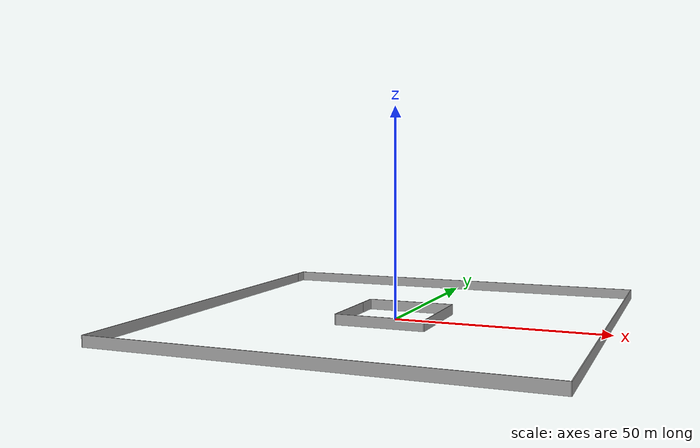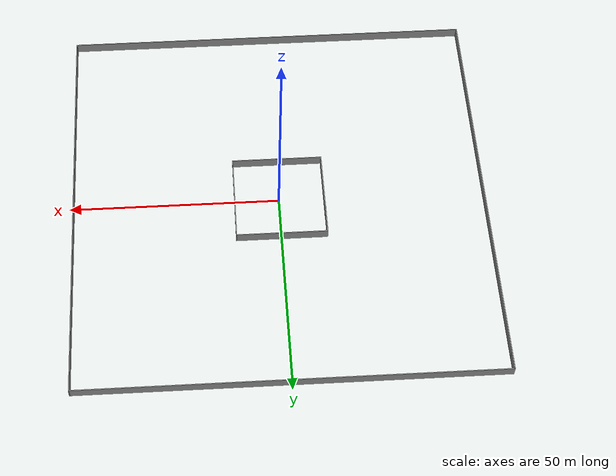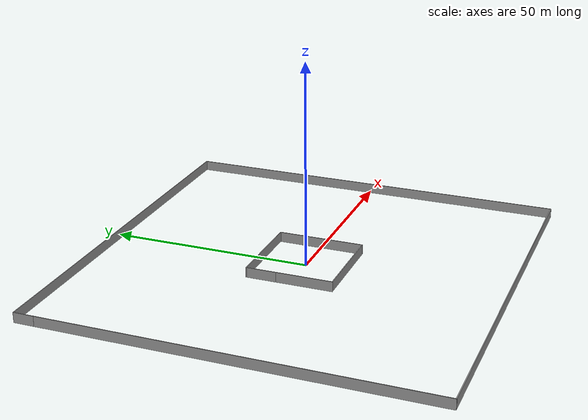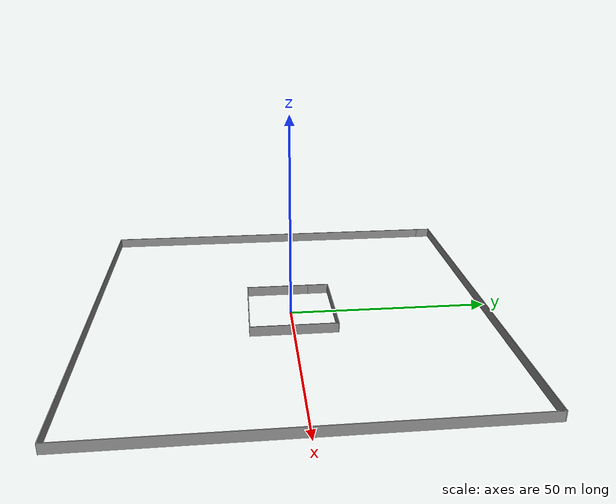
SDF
<?xml version='1.0'?>
<sdf version='1.4'>
  <model name='squareWall'>
    <link name='Wall_13'>
      <collision name='Wall_13_Collision'>
        <geometry>
          <box>
            <size>94.0906 0.2 2.5</size>
          </box>
        </geometry>
        <pose>0 0 1.25 0 -0 0</pose>
      </collision>
      <visual name='Wall_13_Visual'>
        <pose>0 0 1.25 0 -0 0</pose>
        <geometry>
          <box>
            <size>94.0906 0.2 2.5</size>
          </box>
        </geometry>
        <material>
          <script>
            <uri>file://media/materials/scripts/gazebo.material</uri>
            <name>Gazebo/Grey</name>
          </script>
        </material>
      </visual>
      <velocity_decay>
        <linear>0</linear>
        <angular>0</angular>
      </velocity_decay>
      <pose>-48.9481 -2.19385 0 0 0 -1.5708</pose>
    </link>
    <link name='Wall_14'>
      <collision name='Wall_14_Collision'>
        <geometry>
          <box>
            <size>98.0981 0.2 2.5</size>
          </box>
        </geometry>
        <pose>0 0 1.25 0 -0 0</pose>
      </collision>
      <visual name='Wall_14_Visual'>
        <pose>0 0 1.25 0 -0 0</pose>
        <geometry>
          <box>
            <size>98.0981 0.2 2.5</size>
          </box>
        </geometry>
        <material>
          <script>
            <uri>file://media/materials/scripts/gazebo.material</uri>
            <name>Gazebo/Grey</name>
          </script>
        </material>
      </visual>
      <velocity_decay>
        <linear>0</linear>
        <angular>0</angular>
      </velocity_decay>
      <pose>0.000979 -49.1391 0 0 -0 0</pose>
    </link>
    <link name='Wall_15'>
      <collision name='Wall_15_Collision'>
        <geometry>
          <box>
            <size>98.0981 0.2 2.5</size>
          </box>
        </geometry>
        <pose>0 0 1.25 0 -0 0</pose>
      </collision>
      <visual name='Wall_15_Visual'>
        <pose>0 0 1.25 0 -0 0</pose>
        <geometry>
          <box>
            <size>98.0981 0.2 2.5</size>
          </box>
        </geometry>
        <material>
          <script>
            <uri>file://media/materials/scripts/gazebo.material</uri>
            <name>Gazebo/Grey</name>
          </script>
        </material>
      </visual>
      <velocity_decay>
        <linear>0</linear>
        <angular>0</angular>
      </velocity_decay>
      <pose>48.95 -0.190084 0 0 -0 1.5708</pose>
    </link>
    <link name='Wall_16'>
      <collision name='Wall_16_Collision'>
        <geometry>
          <box>
            <size>98.0981 0.2 2.5</size>
          </box>
        </geometry>
        <pose>0 0 1.25 0 -0 0</pose>
      </collision>
      <visual name='Wall_16_Visual'>
        <pose>0 0 1.25 0 -0 0</pose>
        <geometry>
          <box>
            <size>98.0981 0.2 2.5</size>
          </box>
        </geometry>
        <material>
          <script>
            <uri>file://media/materials/scripts/gazebo.material</uri>
            <name>Gazebo/Grey</name>
          </script>
        </material>
      </visual>
      <velocity_decay>
        <linear>0</linear>
        <angular>0</angular>
      </velocity_decay>
      <pose>0.000979 48.759 0 0 -0 3.14159</pose>
    </link>
    <link name='Wall_17'>
      <collision name='Wall_17_Collision'>
        <geometry>
          <box>
            <size>5.06628 0.2 2.5</size>
          </box>
        </geometry>
        <pose>0 0 1.25 0 -0 0</pose>
      </collision>
      <visual name='Wall_17_Visual'>
        <pose>0 0 1.25 0 -0 0</pose>
        <geometry>
          <box>
            <size>5.06628 0.2 2.5</size>
          </box>
        </geometry>
        <material>
          <script>
            <uri>file://media/materials/scripts/gazebo.material</uri>
            <name>Gazebo/Grey</name>
          </script>
        </material>
      </visual>
      <velocity_decay>
        <linear>0</linear>
        <angular>0</angular>
      </velocity_decay>
      <pose>-48.9481 46.3258 0 0 0 -1.5708</pose>
    </link>
    <link name='Wall_5'>
      <collision name='Wall_5_Collision'>
        <geometry>
          <box>
            <size>16.0552 0.2 2.5</size>
          </box>
        </geometry>
        <pose>0 0 1.25 0 -0 0</pose>
      </collision>
      <visual name='Wall_5_Visual'>
        <pose>0 0 1.25 0 -0 0</pose>
        <geometry>
          <box>
            <size>16.0552 0.2 2.5</size>
          </box>
        </geometry>
        <material>
          <script>
            <uri>file://media/materials/scripts/gazebo.material</uri>
            <name>Gazebo/Grey</name>
          </script>
        </material>
      </visual>
      <velocity_decay>
        <linear>0</linear>
        <angular>0</angular>
      </velocity_decay>
      <pose>-10.7387 -2.61164 0 0 0 -1.5708</pose>
    </link>
    <link name='Wall_6'>
      <collision name='Wall_6_Collision'>
        <geometry>
          <box>
            <size>21.5822 0.2 2.5</size>
          </box>
        </geometry>
        <pose>0 0 1.25 0 -0 0</pose>
      </collision>
      <visual name='Wall_6_Visual'>
        <pose>0 0 1.25 0 -0 0</pose>
        <geometry>
          <box>
            <size>21.5822 0.2 2.5</size>
          </box>
        </geometry>
        <material>
          <script>
            <uri>file://media/materials/scripts/gazebo.material</uri>
            <name>Gazebo/Grey</name>
          </script>
        </material>
      </visual>
      <velocity_decay>
        <linear>0</linear>
        <angular>0</angular>
      </velocity_decay>
      <pose>-0.047548 -10.5392 0 0 -0 0</pose>
    </link>
    <link name='Wall_7'>
      <collision name='Wall_7_Collision'>
        <geometry>
          <box>
            <size>21.4149 0.2 2.5</size>
          </box>
        </geometry>
        <pose>0 0 1.25 0 -0 0</pose>
      </collision>
      <visual name='Wall_7_Visual'>
        <pose>0 0 1.25 0 -0 0</pose>
        <geometry>
          <box>
            <size>21.4149 0.2 2.5</size>
          </box>
        </geometry>
        <material>
          <script>
            <uri>file://media/materials/scripts/gazebo.material</uri>
            <name>Gazebo/Grey</name>
          </script>
        </material>
      </visual>
      <velocity_decay>
        <linear>0</linear>
        <angular>0</angular>
      </velocity_decay>
      <pose>10.6436 0.068231 0 0 -0 1.5708</pose>
    </link>
    <link name='Wall_8'>
      <collision name='Wall_8_Collision'>
        <geometry>
          <box>
            <size>21.601 0.2 2.5</size>
          </box>
        </geometry>
        <pose>0 0 1.25 0 -0 0</pose>
      </collision>
      <visual name='Wall_8_Visual'>
        <pose>0 0 1.25 0 -0 0</pose>
        <geometry>
          <box>
            <size>21.601 0.2 2.5</size>
          </box>
        </geometry>
        <material>
          <script>
            <uri>file://media/materials/scripts/gazebo.material</uri>
            <name>Gazebo/Grey</name>
          </script>
        </material>
      </visual>
      <velocity_decay>
        <linear>0</linear>
        <angular>0</angular>
      </velocity_decay>
      <pose>-0.056934 10.6757 0 0 -0 3.14159</pose>
    </link>
    <link name='Wall_9'>
      <collision name='Wall_9_Collision'>
        <geometry>
          <box>
            <size>7.50425 0.2 2.5</size>
          </box>
        </geometry>
        <pose>0 0 1.25 0 -0 0</pose>
      </collision>
      <visual name='Wall_9_Visual'>
        <pose>0 0 1.25 0 -0 0</pose>
        <geometry>
          <box>
            <size>7.50425 0.2 2.5</size>
          </box>
        </geometry>
        <material>
          <script>
            <uri>file://media/materials/scripts/gazebo.material</uri>
            <name>Gazebo/Grey</name>
          </script>
        </material>
      </visual>
      <velocity_decay>
        <linear>0</linear>
        <angular>0</angular>
      </velocity_decay>
      <pose>-10.7574 7.02356 0 0 0 -1.5708</pose>
    </link>
    <static>1</static>
  </model>
</sdf>
